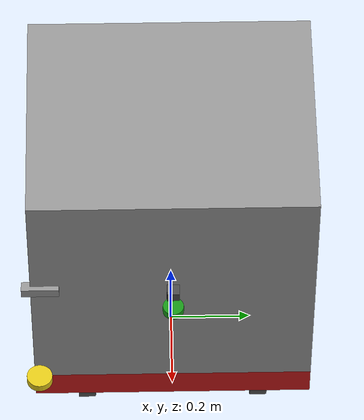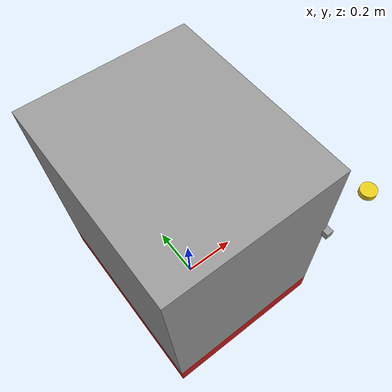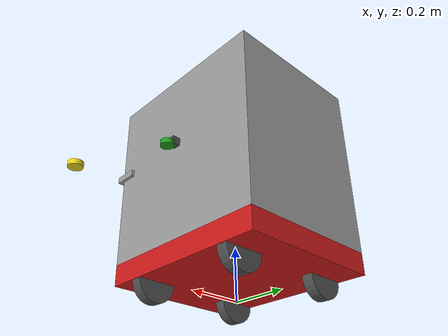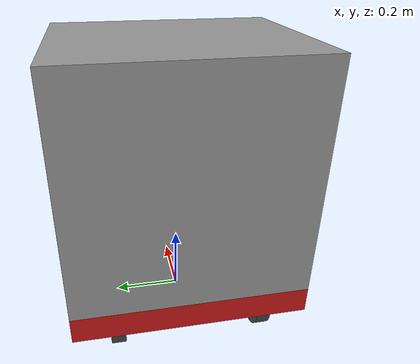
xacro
<?xml version="1.0"?>
<robot xmlns:xacro="http://www.ros.org/wiki/xacro" name="rc2026_robot">

  <!-- ══════════ 底盘几何参数 ══════════ -->
  <xacro:arg name="chassis_width"   default="0.56000"/>
  <xacro:arg name="chassis_depth"   default="0.68000"/>
  <xacro:arg name="chassis_height"  default="0.67700"/>
  <xacro:arg name="wheel_radius"    default="0.07625"/>
  <xacro:arg name="wheel_width"     default="0.0412"/>
  <xacro:arg name="wheel_base_x"    default="0.20"/>
  <xacro:arg name="wheel_base_y"    default="0.213"/>

  <!-- ══════════ D435i 相机安装参数 ══════════ -->
  <xacro:arg name="camera_x"     default="0.28"/>
  <xacro:arg name="camera_y"     default="-0.316"/>
  <xacro:arg name="camera_z"     default="0.445"/>
  <xacro:arg name="camera_roll"  default="0.0"/>
  <xacro:arg name="camera_pitch" default="0.0"/>
  <xacro:arg name="camera_yaw"   default="0.0"/>

  <!-- ══════════ Livox Mid-360S 激光雷达安装参数 ══════════ -->
  <xacro:arg name="lidar_x"     default="0.197"/>
  <xacro:arg name="lidar_y"     default="0.27"/>
  <xacro:arg name="lidar_z"     default="0.565"/>
  <xacro:arg name="lidar_roll"  default="0.0"/>
  <xacro:arg name="lidar_pitch" default="0.5236"/>
  <xacro:arg name="lidar_yaw"   default="0.0"/>

  <!-- ══════════ 武器头机械臂安装参数 ══════════ -->
  <xacro:arg name="weapon_arm_x"     default="0.51"/>
  <xacro:arg name="weapon_arm_y"     default="-0.316"/>
  <xacro:arg name="weapon_arm_z"     default="0.41"/>
  <xacro:arg name="weapon_arm_roll"  default="0.0"/>
  <xacro:arg name="weapon_arm_pitch" default="0.0"/>
  <xacro:arg name="weapon_arm_yaw"   default="0.0"/>

  <!-- ══════════ KFS机械臂底座安装参数 ══════════ -->
  <xacro:arg name="kfs_arm_x"     default="0.0"/>
  <xacro:arg name="kfs_arm_y"     default="0.0"/>
  <xacro:arg name="kfs_arm_z"     default="0.05"/>
  <xacro:arg name="kfs_arm_roll"  default="0.0"/>
  <xacro:arg name="kfs_arm_pitch" default="0.0"/>
  <xacro:arg name="kfs_arm_yaw"   default="0.0"/>

  <!-- ══════════ KFS机械臂展开末端位置（相对arm_base_link）══════════ -->
  <xacro:arg name="kfs_deployed_x" default="0.30"/>
  <xacro:arg name="kfs_deployed_y" default="0.0"/>
  <xacro:arg name="kfs_deployed_z" default="0.40"/>

  <!-- ══════════ USB相机安装参数（相对arm_deployed_link，镜头朝下）══════════ -->
  <xacro:arg name="usb_cam_x"     default="0.0"/>
  <xacro:arg name="usb_cam_y"     default="0.0"/>
  <xacro:arg name="usb_cam_z"     default="0.0"/>
  <xacro:arg name="usb_cam_pitch" default="1.5708"/>

  <!-- ══════════ 吸盘安装参数（相对arm_deployed_link）══════════ -->
  <xacro:arg name="suction_x" default="0.03"/>
  <xacro:arg name="suction_y" default="0.0"/>
  <xacro:arg name="suction_z" default="-0.02"/>

  <!-- ══════════ 属性 (xacro:arg 的简写别名) ══════════ -->
  <xacro:property name="cw"  value="$(arg chassis_width)"/>
  <xacro:property name="cd"  value="$(arg chassis_depth)"/>
  <xacro:property name="ch"  value="$(arg chassis_height)"/>
  <xacro:property name="wr"  value="$(arg wheel_radius)"/>
  <xacro:property name="ww"  value="$(arg wheel_width)"/>
  <xacro:property name="wbx" value="$(arg wheel_base_x)"/>
  <xacro:property name="wby" value="$(arg wheel_base_y)"/>

  <!-- ══════════ 材质定义 ══════════ -->
  <material name="grey">      <color rgba="0.6 0.6 0.6 1.0"/></material>
  <material name="dark_grey"> <color rgba="0.3 0.3 0.3 1.0"/></material>
  <material name="red">       <color rgba="0.8 0.1 0.1 1.0"/></material>
  <material name="blue">      <color rgba="0.1 0.1 0.8 1.0"/></material>
  <material name="green">     <color rgba="0.1 0.6 0.1 1.0"/></material>
  <material name="yellow">    <color rgba="0.9 0.8 0.1 1.0"/></material>

  <!-- ══════════════ base_footprint ══════════════ -->
  <link name="base_footprint"/>

  <joint name="base_footprint_joint" type="fixed">
    <parent link="base_footprint"/>
    <child link="base_link"/>
    <origin xyz="0 0 ${wr}" rpy="0 0 0"/>
  </joint>

  <!-- ══════════════ base_link (底盘主体) ══════════════ -->
  <link name="base_link">
    <visual>
      <geometry><box size="${cw} ${cd} 0.08"/></geometry>
      <origin xyz="0 0 0.04" rpy="0 0 0"/>
      <material name="red"/>
    </visual>
    <collision>
      <geometry><box size="${cw} ${cd} 0.08"/></geometry>
      <origin xyz="0 0 0.04" rpy="0 0 0"/>
    </collision>
    <inertial>
      <mass value="25.0"/>
      <inertia ixx="1.0" ixy="0" ixz="0" iyy="1.0" iyz="0" izz="1.5"/>
    </inertial>
  </link>

  <!-- ══════════════ 框架上部结构 ══════════════ -->
  <link name="frame_upper">
    <visual>
      <geometry><box size="${cw} ${cd} ${ch}"/></geometry>
      <origin xyz="0 0 ${ch/2}" rpy="0 0 0"/>
      <material name="grey"/>
    </visual>
    <collision>
      <geometry><box size="${cw} ${cd} ${ch}"/></geometry>
      <origin xyz="0 0 ${ch/2}" rpy="0 0 0"/>
    </collision>
    <inertial>
      <mass value="5.0"/>
      <origin xyz="0 0 ${ch/2}"/>
      <inertia ixx="0.3" ixy="0" ixz="0" iyy="0.3" iyz="0" izz="0.2"/>
    </inertial>
  </link>

  <joint name="frame_upper_joint" type="fixed">
    <parent link="base_link"/>
    <child link="frame_upper"/>
    <origin xyz="0 0 0.08" rpy="0 0 0"/>
  </joint>

  <!-- ══════════════ 万向轮宏定义 ══════════════ -->
  <xacro:macro name="omni_wheel" params="name x y">
    <link name="${name}_link">
      <visual>
        <geometry><cylinder radius="${wr}" length="${ww}"/></geometry>
        <origin xyz="0 0 0" rpy="${pi/2} 0 0"/>
        <material name="dark_grey"/>
      </visual>
      <collision>
        <geometry><cylinder radius="${wr}" length="${ww}"/></geometry>
        <origin xyz="0 0 0" rpy="${pi/2} 0 0"/>
      </collision>
      <inertial>
        <mass value="0.8"/>
        <inertia ixx="0.001" ixy="0" ixz="0" iyy="0.001" iyz="0" izz="0.001"/>
      </inertial>
    </link>
    <joint name="${name}_joint" type="continuous">
      <parent link="base_link"/>
      <child link="${name}_link"/>
      <origin xyz="${x} ${y} 0" rpy="0 0 0"/>
      <axis xyz="0 1 0"/>
      <dynamics damping="0.1" friction="0.05"/>
    </joint>
  </xacro:macro>

  <xacro:omni_wheel name="wheel_fl" x="${wbx}"  y="${wby}"/>
  <xacro:omni_wheel name="wheel_fr" x="${wbx}"  y="${-wby}"/>
  <xacro:omni_wheel name="wheel_rl" x="${-wbx}" y="${wby}"/>
  <xacro:omni_wheel name="wheel_rr" x="${-wbx}" y="${-wby}"/>

  <!-- ══════════════ D435i 主视觉相机 ══════════════ -->
  <link name="camera_link">
    <visual>
      <geometry><box size="0.025 0.09 0.025"/></geometry>
      <material name="grey"/>
    </visual>
    <collision>
      <geometry><box size="0.025 0.09 0.025"/></geometry>
    </collision>
    <inertial>
      <mass value="0.072"/>
      <inertia ixx="0.00001" ixy="0" ixz="0" iyy="0.00001" iyz="0" izz="0.00001"/>
    </inertial>
  </link>

  <joint name="camera_joint" type="fixed">
    <parent link="base_link"/>
    <child link="camera_link"/>
    <origin xyz="$(arg camera_x) $(arg camera_y) $(arg camera_z)"
            rpy="$(arg camera_roll) $(arg camera_pitch) $(arg camera_yaw)"/>
  </joint>

  <!-- D435i 光学坐标系 (Z前 X右 Y下) -->
  <link name="camera_optical_frame"/>
  <joint name="camera_optical_joint" type="fixed">
    <parent link="camera_link"/>
    <child link="camera_optical_frame"/>
    <origin xyz="0 0 0" rpy="${-pi/2} 0 ${-pi/2}"/>
  </joint>

  <!-- ══════════════ Livox Mid-360S 激光雷达 ══════════════ -->
  <link name="lidar_link">
    <visual>
      <geometry><cylinder radius="0.05" length="0.06"/></geometry>
      <material name="blue"/>
    </visual>
    <collision>
      <geometry><cylinder radius="0.05" length="0.06"/></geometry>
    </collision>
    <inertial>
      <mass value="0.265"/>
      <inertia ixx="0.0001" ixy="0" ixz="0" iyy="0.0001" iyz="0" izz="0.0001"/>
    </inertial>
  </link>

  <joint name="lidar_joint" type="fixed">
    <parent link="base_link"/>
    <child link="lidar_link"/>
    <origin xyz="$(arg lidar_x) $(arg lidar_y) $(arg lidar_z)"
            rpy="$(arg lidar_roll) $(arg lidar_pitch) $(arg lidar_yaw)"/>
  </joint>

  <!-- ══════════════ 武器头机械臂底座 ══════════════ -->
  <!-- 功能: 拾取/释放武器端头 (ActionGroupCmd id=1/2)
       安装位置: ★ 待现场测量后通过 robot_params.yaml 修改 ★ -->
  <link name="weapon_arm_base_link">
    <visual>
      <geometry><cylinder radius="0.03" length="0.02"/></geometry>
      <material name="yellow"/>
    </visual>
    <collision>
      <geometry><cylinder radius="0.03" length="0.02"/></geometry>
    </collision>
    <inertial>
      <mass value="0.1"/>
      <inertia ixx="0.00001" ixy="0" ixz="0" iyy="0.00001" iyz="0" izz="0.00001"/>
    </inertial>
  </link>

  <joint name="weapon_arm_joint" type="fixed">
    <parent link="base_link"/>
    <child link="weapon_arm_base_link"/>
    <origin xyz="$(arg weapon_arm_x) $(arg weapon_arm_y) $(arg weapon_arm_z)"
            rpy="$(arg weapon_arm_roll) $(arg weapon_arm_pitch) $(arg weapon_arm_yaw)"/>
  </joint>

  <!-- ══════════════ KFS机械臂底座 ══════════════ -->
  <!-- 功能: 梅林区精对齐 + 吸盘拾取KFS
       安装位置: ★ 待现场测量后通过 robot_params.yaml 修改 ★ -->
  <link name="arm_base_link">
    <visual>
      <geometry><cylinder radius="0.03" length="0.02"/></geometry>
      <material name="green"/>
    </visual>
    <collision>
      <geometry><cylinder radius="0.03" length="0.02"/></geometry>
    </collision>
    <inertial>
      <mass value="0.1"/>
      <inertia ixx="0.00001" ixy="0" ixz="0" iyy="0.00001" iyz="0" izz="0.00001"/>
    </inertial>
  </link>

  <joint name="arm_base_joint" type="fixed">
    <parent link="base_link"/>
    <child link="arm_base_link"/>
    <origin xyz="$(arg kfs_arm_x) $(arg kfs_arm_y) $(arg kfs_arm_z)"
            rpy="$(arg kfs_arm_roll) $(arg kfs_arm_pitch) $(arg kfs_arm_yaw)"/>
  </joint>

  <!-- ══════════════ KFS机械臂展开末端 ══════════════ -->
  <!-- 代表机械臂完全抬升+前伸后末端中心的固定位姿
       精对齐阶段不调整机械臂关节，误差转换为底盘 vx/vy
       ★ 待实测机械臂展开尺寸后通过 robot_params.yaml 修改 ★ -->
  <link name="arm_deployed_link"/>

  <joint name="arm_deployed_joint" type="fixed">
    <parent link="arm_base_link"/>
    <child link="arm_deployed_link"/>
    <origin xyz="$(arg kfs_deployed_x) $(arg kfs_deployed_y) $(arg kfs_deployed_z)"
            rpy="0 0 0"/>
  </joint>

  <!-- ══════════════ USB相机 (KFS臂末端, 精对齐用, 镜头朝下) ══════════════ -->
  <link name="usb_camera_link">
    <visual>
      <geometry><box size="0.03 0.03 0.03"/></geometry>
      <material name="dark_grey"/>
    </visual>
    <collision>
      <geometry><box size="0.03 0.03 0.03"/></geometry>
    </collision>
    <inertial>
      <mass value="0.05"/>
      <inertia ixx="0.00001" ixy="0" ixz="0" iyy="0.00001" iyz="0" izz="0.00001"/>
    </inertial>
  </link>

  <joint name="usb_camera_joint" type="fixed">
    <parent link="arm_deployed_link"/>
    <child link="usb_camera_link"/>
    <!-- pitch=π/2 使相机X轴（前方）朝向-Z（地面），实现镜头朝下 -->
    <origin xyz="$(arg usb_cam_x) $(arg usb_cam_y) $(arg usb_cam_z)"
            rpy="0 $(arg usb_cam_pitch) 0"/>
  </joint>

  <!-- USB相机光学坐标系 (Z指向镜头朝向/地面, X右 Y下) -->
  <link name="usb_camera_optical_frame"/>
  <joint name="usb_camera_optical_joint" type="fixed">
    <parent link="usb_camera_link"/>
    <child link="usb_camera_optical_frame"/>
    <origin xyz="0 0 0" rpy="${-pi/2} 0 ${-pi/2}"/>
  </joint>

  <!-- ══════════════ 吸盘 (KFS臂末端, 与USB相机存在小偏移) ══════════════ -->
  <!-- ★ 待现场测量后通过 robot_params.yaml 修改 suction_x/y/z ★ -->
  <link name="suction_link">
    <visual>
      <geometry><cylinder radius="0.025" length="0.02"/></geometry>
      <material name="green"/>
    </visual>
    <collision>
      <geometry><cylinder radius="0.025" length="0.02"/></geometry>
    </collision>
    <inertial>
      <mass value="0.05"/>
      <inertia ixx="0.00001" ixy="0" ixz="0" iyy="0.00001" iyz="0" izz="0.00001"/>
    </inertial>
  </link>

  <joint name="suction_joint" type="fixed">
    <parent link="arm_deployed_link"/>
    <child link="suction_link"/>
    <origin xyz="$(arg suction_x) $(arg suction_y) $(arg suction_z)" rpy="0 0 0"/>
  </joint>

</robot>
